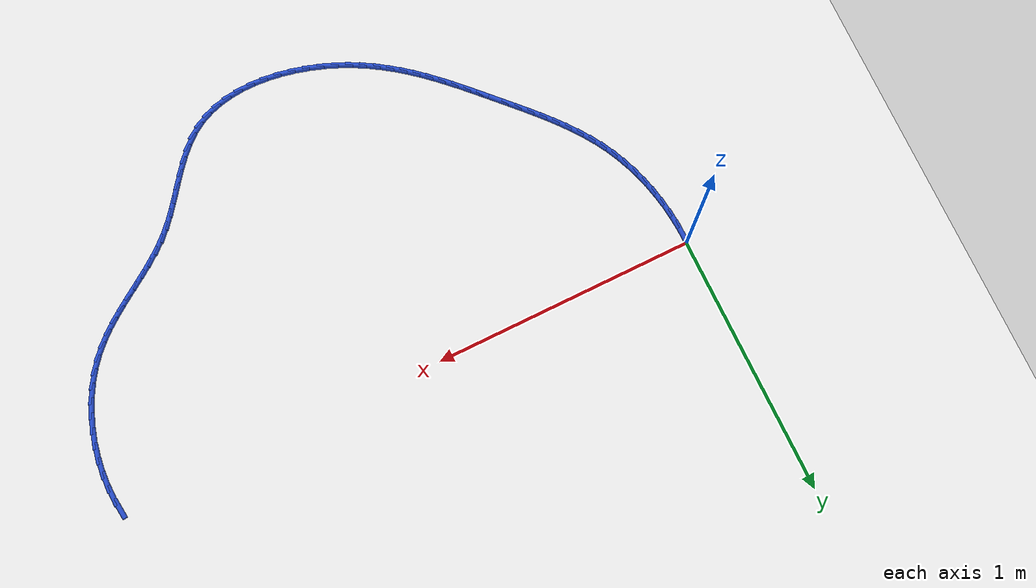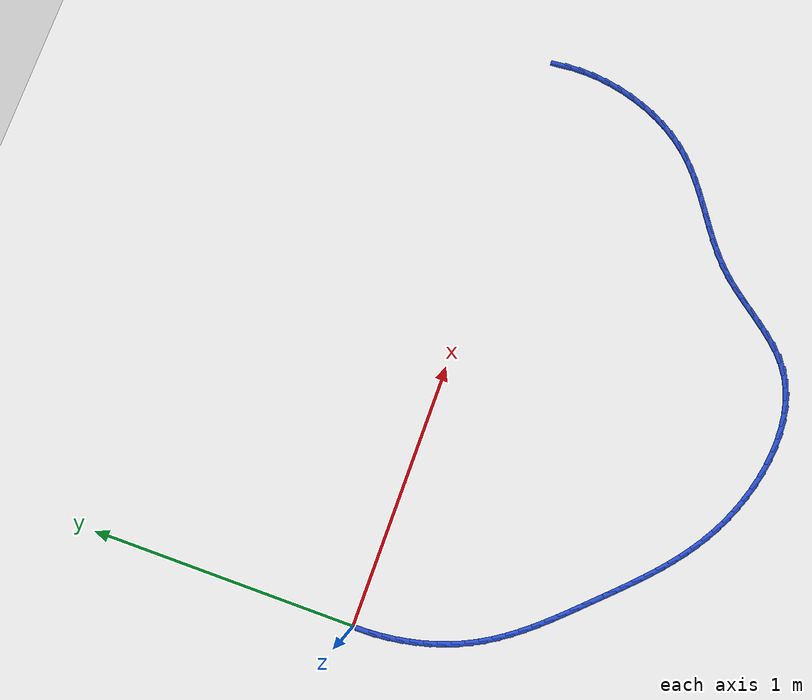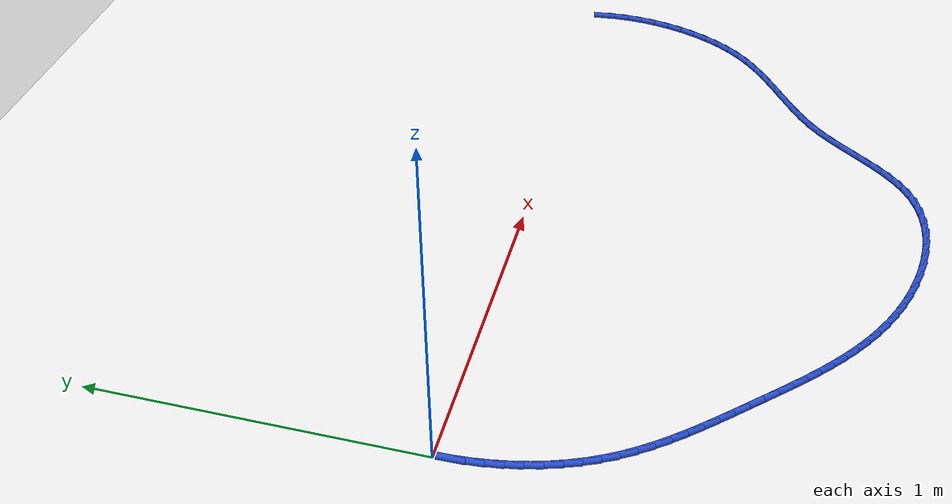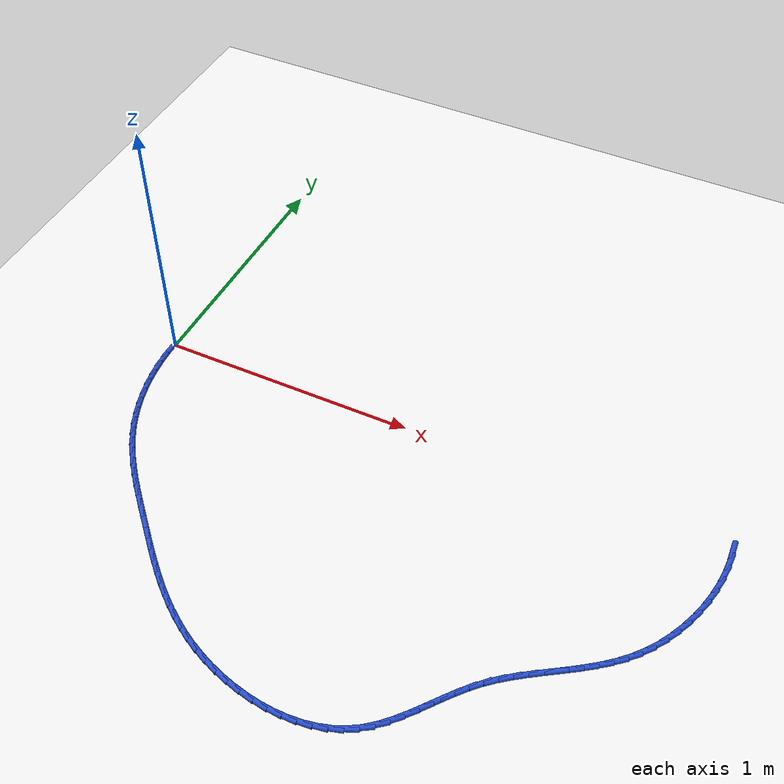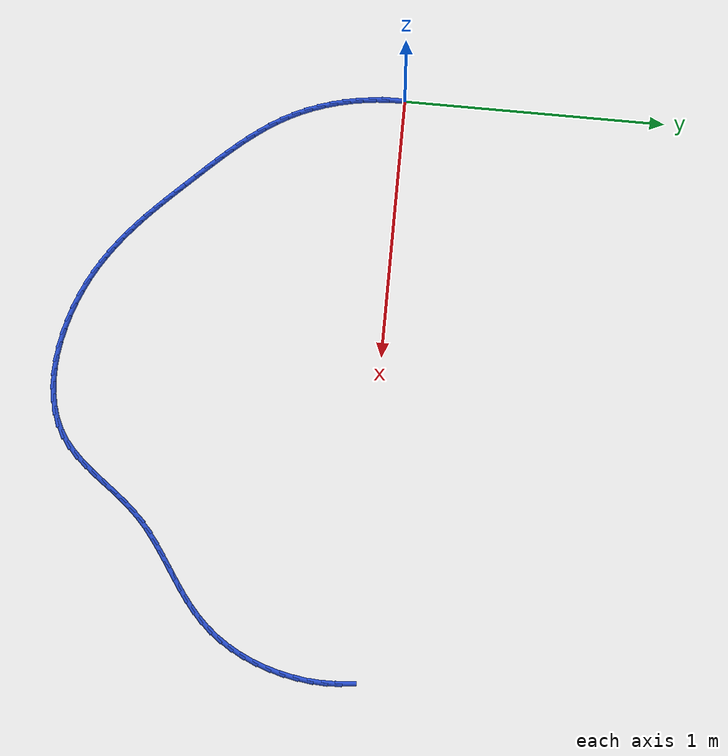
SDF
<sdf version="1.6">
 <world name="default">
  <model name="ground_plane">
   <static>1</static>
   <link name="link">
    <collision name="collision">
     <geometry><plane><normal>0 0 1</normal><size>100 100</size></plane></geometry>
     <surface><friction><ode><mu>100</mu><mu2>50</mu2></ode></friction></surface>
    </collision>
    <visual name="visual">
     <cast_shadows>0</cast_shadows>
     <geometry><plane><normal>0 0 1</normal><size>100 100</size></plane></geometry>
     <material>
      <script><uri>file://media/materials/scripts/gazebo.material</uri><name>Gazebo/WhiteGlow</name></script>
     </material>
    </visual>
   </link>
  </model>
  <model name="line">
   <link name="link_69">
    <pose>2.253079117322785 -0.021182918843514767 0.01 0 1.57 -1.490465903702625</pose>
    <collision name="collision">
     <geometry><cylinder><radius>0.01</radius><length>0.08</length></cylinder></geometry>
    </collision>
    <visual name="visual">
     <material>
      <script><name>Gazebo/Blue</name><uri>file://media/materials/scripts/gazebo.material</uri></script>
     </material>
     <geometry><cylinder><radius>0.01</radius><length>0.08</length></cylinder></geometry>
    </visual>
   </link>
   <link name="link_70">
    <pose>2.2573084556602803 -0.07371889444078131 0.01 0 1.57 1.5670767450500969</pose>
    <collision name="collision">
     <geometry><cylinder><radius>0.01</radius><length>0.08</length></cylinder></geometry>
    </collision>
    <visual name="visual">
     <material>
      <script><name>Gazebo/Blue</name><uri>file://media/materials/scripts/gazebo.material</uri></script>
     </material>
     <geometry><cylinder><radius>0.01</radius><length>0.08</length></cylinder></geometry>
    </visual>
   </link>
   <link name="link_71">
    <pose>2.2571092402563964 -0.1272771971793581 0.01 0 1.57 1.4882715956242358</pose>
    <collision name="collision">
     <geometry><cylinder><radius>0.01</radius><length>0.08</length></cylinder></geometry>
    </collision>
    <visual name="visual">
     <material>
      <script><name>Gazebo/Blue</name><uri>file://media/materials/scripts/gazebo.material</uri></script>
     </material>
     <geometry><cylinder><radius>0.01</radius><length>0.08</length></cylinder></geometry>
    </visual>
   </link>
   <link name="link_72">
    <pose>2.2526388152243806 -0.1813248989983842 0.01 0 1.57 1.413159112111547</pose>
    <collision name="collision">
     <geometry><cylinder><radius>0.01</radius><length>0.08</length></cylinder></geometry>
    </collision>
    <visual name="visual">
     <material>
      <script><name>Gazebo/Blue</name><uri>file://media/materials/scripts/gazebo.material</uri></script>
     </material>
     <geometry><cylinder><radius>0.01</radius><length>0.08</length></cylinder></geometry>
    </visual>
   </link>
   <link name="link_73">
    <pose>2.244054524677481 -0.23532907183699922 0.01 0 1.57 1.3402451435796385</pose>
    <collision name="collision">
     <geometry><cylinder><radius>0.01</radius><length>0.08</length></cylinder></geometry>
    </collision>
    <visual name="visual">
     <material>
      <script><name>Gazebo/Blue</name><uri>file://media/materials/scripts/gazebo.material</uri></script>
     </material>
     <geometry><cylinder><radius>0.01</radius><length>0.08</length></cylinder></geometry>
    </visual>
   </link>
   <link name="link_74">
    <pose>2.231513712728946 -0.28875678763434026 0.01 0 1.57 1.2680767030884115</pose>
    <collision name="collision">
     <geometry><cylinder><radius>0.01</radius><length>0.08</length></cylinder></geometry>
    </collision>
    <visual name="visual">
     <material>
      <script><name>Gazebo/Blue</name><uri>file://media/materials/scripts/gazebo.material</uri></script>
     </material>
     <geometry><cylinder><radius>0.01</radius><length>0.08</length></cylinder></geometry>
    </visual>
   </link>
   <link name="link_75">
    <pose>2.2151737234920246 -0.341075118329547 0.01 0 1.57 1.1952087913250653</pose>
    <collision name="collision">
     <geometry><cylinder><radius>0.01</radius><length>0.08</length></cylinder></geometry>
    </collision>
    <visual name="visual">
     <material>
      <script><name>Gazebo/Blue</name><uri>file://media/materials/scripts/gazebo.material</uri></script>
     </material>
     <geometry><cylinder><radius>0.01</radius><length>0.08</length></cylinder></geometry>
    </visual>
   </link>
   <link name="link_76">
    <pose>2.195191901079964 -0.3917511358617581 0.01 0 1.57 1.1201651749893309</pose>
    <collision name="collision">
     <geometry><cylinder><radius>0.01</radius><length>0.08</length></cylinder></geometry>
    </collision>
    <visual name="visual">
     <material>
      <script><name>Gazebo/Blue</name><uri>file://media/materials/scripts/gazebo.material</uri></script>
     </material>
     <geometry><cylinder><radius>0.01</radius><length>0.08</length></cylinder></geometry>
    </visual>
   </link>
   <link name="link_77">
    <pose>2.171725589606012 -0.44025191217011217 0.01 0 1.57 1.041401470117852</pose>
    <collision name="collision">
     <geometry><cylinder><radius>0.01</radius><length>0.08</length></cylinder></geometry>
    </collision>
    <visual name="visual">
     <material>
      <script><name>Gazebo/Blue</name><uri>file://media/materials/scripts/gazebo.material</uri></script>
     </material>
     <geometry><cylinder><radius>0.01</radius><length>0.08</length></cylinder></geometry>
    </visual>
   </link>
   <link name="link_78">
    <pose>2.1449321331834166 -0.48604451919374897 0.01 0 1.57 0.957280943739161</pose>
    <collision name="collision">
     <geometry><cylinder><radius>0.01</radius><length>0.08</length></cylinder></geometry>
    </collision>
    <visual name="visual">
     <material>
      <script><name>Gazebo/Blue</name><uri>file://media/materials/scripts/gazebo.material</uri></script>
     </material>
     <geometry><cylinder><radius>0.01</radius><length>0.08</length></cylinder></geometry>
    </visual>
   </link>
   <link name="link_79">
    <pose>2.1149688759254275 -0.5285960288718057 0.01 0 1.57 0.8664858030551501</pose>
    <collision name="collision">
     <geometry><cylinder><radius>0.01</radius><length>0.08</length></cylinder></geometry>
    </collision>
    <visual name="visual">
     <material>
      <script><name>Gazebo/Blue</name><uri>file://media/materials/scripts/gazebo.material</uri></script>
     </material>
     <geometry><cylinder><radius>0.01</radius><length>0.08</length></cylinder></geometry>
    </visual>
   </link>
   <link name="link_80">
    <pose>2.0820000516932327 -0.5673973103852394 0.01 0 1.57 0.7780754131058806</pose>
    <collision name="collision">
     <geometry><cylinder><radius>0.01</radius><length>0.08</length></cylinder></geometry>
    </collision>
    <visual name="visual">
     <material>
      <script><name>Gazebo/Blue</name><uri>file://media/materials/scripts/gazebo.material</uri></script>
     </material>
     <geometry><cylinder><radius>0.01</radius><length>0.08</length></cylinder></geometry>
    </visual>
   </link>
   <link name="link_81">
    <pose>2.046358288488346 -0.6025208675571405 0.01 0 1.57 0.7042316357529733</pose>
    <collision name="collision">
     <geometry><cylinder><radius>0.01</radius><length>0.08</length></cylinder></geometry>
    </collision>
    <visual name="visual">
     <material>
      <script><name>Gazebo/Blue</name><uri>file://media/materials/scripts/gazebo.material</uri></script>
     </material>
     <geometry><cylinder><radius>0.01</radius><length>0.08</length></cylinder></geometry>
    </visual>
   </link>
   <link name="link_82">
    <pose>2.00855031710709 -0.6346405565887573 0.01 0 1.57 0.6471058755725223</pose>
    <collision name="collision">
     <geometry><cylinder><radius>0.01</radius><length>0.08</length></cylinder></geometry>
    </collision>
    <visual name="visual">
     <material>
      <script><name>Gazebo/Blue</name><uri>file://media/materials/scripts/gazebo.material</uri></script>
     </material>
     <geometry><cylinder><radius>0.01</radius><length>0.08</length></cylinder></geometry>
    </visual>
   </link>
   <link name="link_83">
    <pose>1.9690909002224433 -0.6644579758444303 0.01 0 1.57 0.60740320628714</pose>
    <collision name="collision">
     <geometry><cylinder><radius>0.01</radius><length>0.08</length></cylinder></geometry>
    </collision>
    <visual name="visual">
     <material>
      <script><name>Gazebo/Blue</name><uri>file://media/materials/scripts/gazebo.material</uri></script>
     </material>
     <geometry><cylinder><radius>0.01</radius><length>0.08</length></cylinder></geometry>
    </visual>
   </link>
   <link name="link_84">
    <pose>1.9284948005073845 -0.6926747236885022 0.01 0 1.57 0.5852934455836823</pose>
    <collision name="collision">
     <geometry><cylinder><radius>0.01</radius><length>0.08</length></cylinder></geometry>
    </collision>
    <visual name="visual">
     <material>
      <script><name>Gazebo/Blue</name><uri>file://media/materials/scripts/gazebo.material</uri></script>
     </material>
     <geometry><cylinder><radius>0.01</radius><length>0.08</length></cylinder></geometry>
    </visual>
   </link>
   <link name="link_85">
    <pose>1.8872767806348936 -0.7199923984853148 0.01 0 1.57 0.5807656980729812</pose>
    <collision name="collision">
     <geometry><cylinder><radius>0.01</radius><length>0.08</length></cylinder></geometry>
    </collision>
    <visual name="visual">
     <material>
      <script><name>Gazebo/Blue</name><uri>file://media/materials/scripts/gazebo.material</uri></script>
     </material>
     <geometry><cylinder><radius>0.01</radius><length>0.08</length></cylinder></geometry>
    </visual>
   </link>
   <link name="link_86">
    <pose>1.8459516032779482 -0.74711259859921 0.01 0 1.57 0.5938329818406481</pose>
    <collision name="collision">
     <geometry><cylinder><radius>0.01</radius><length>0.08</length></cylinder></geometry>
    </collision>
    <visual name="visual">
     <material>
      <script><name>Gazebo/Blue</name><uri>file://media/materials/scripts/gazebo.material</uri></script>
     </material>
     <geometry><cylinder><radius>0.01</radius><length>0.08</length></cylinder></geometry>
    </visual>
   </link>
   <link name="link_87">
    <pose>1.8050340311095265 -0.7747369223945297 0.01 0 1.57 0.6245744467583751</pose>
    <collision name="collision">
     <geometry><cylinder><radius>0.01</radius><length>0.08</length></cylinder></geometry>
    </collision>
    <visual name="visual">
     <material>
      <script><name>Gazebo/Blue</name><uri>file://media/materials/scripts/gazebo.material</uri></script>
     </material>
     <geometry><cylinder><radius>0.01</radius><length>0.08</length></cylinder></geometry>
    </visual>
   </link>
   <link name="link_88">
    <pose>1.765038826802609 -0.8035669682356151 0.01 0 1.57 0.6730133702398493</pose>
    <collision name="collision">
     <geometry><cylinder><radius>0.01</radius><length>0.08</length></cylinder></geometry>
    </collision>
    <visual name="visual">
     <material>
      <script><name>Gazebo/Blue</name><uri>file://media/materials/scripts/gazebo.material</uri></script>
     </material>
     <geometry><cylinder><radius>0.01</radius><length>0.08</length></cylinder></geometry>
    </visual>
   </link>
   <link name="link_89">
    <pose>1.7264807530301733 -0.8343043344868087 0.01 0 1.57 0.7388302728225601</pose>
    <collision name="collision">
     <geometry><cylinder><radius>0.01</radius><length>0.08</length></cylinder></geometry>
    </collision>
    <visual name="visual">
     <material>
      <script><name>Gazebo/Blue</name><uri>file://media/materials/scripts/gazebo.material</uri></script>
     </material>
     <geometry><cylinder><radius>0.01</radius><length>0.08</length></cylinder></geometry>
    </visual>
   </link>
   <link name="link_90">
    <pose>1.6898745724651993 -0.867650619512452 0.01 0 1.57 0.8154487511754153</pose>
    <collision name="collision">
     <geometry><cylinder><radius>0.01</radius><length>0.08</length></cylinder></geometry>
    </collision>
    <visual name="visual">
     <material>
      <script><name>Gazebo/Blue</name><uri>file://media/materials/scripts/gazebo.material</uri></script>
     </material>
     <geometry><cylinder><radius>0.01</radius><length>0.08</length></cylinder></geometry>
    </visual>
   </link>
   <link name="link_91">
    <pose>1.655574744582883 -0.9040764345221076 0.01 0 1.57 0.8739197145126936</pose>
    <collision name="collision">
     <geometry><cylinder><radius>0.01</radius><length>0.08</length></cylinder></geometry>
    </collision>
    <visual name="visual">
     <material>
      <script><name>Gazebo/Blue</name><uri>file://media/materials/scripts/gazebo.material</uri></script>
     </material>
     <geometry><cylinder><radius>0.01</radius><length>0.08</length></cylinder></geometry>
    </visual>
   </link>
   <link name="link_92">
    <pose>1.6231109900513339 -0.9428639922833624 0.01 0 1.57 0.9064613731167324</pose>
    <collision name="collision">
     <geometry><cylinder><radius>0.01</radius><length>0.08</length></cylinder></geometry>
    </collision>
    <visual name="visual">
     <material>
      <script><name>Gazebo/Blue</name><uri>file://media/materials/scripts/gazebo.material</uri></script>
     </material>
     <geometry><cylinder><radius>0.01</radius><length>0.08</length></cylinder></geometry>
    </visual>
   </link>
   <link name="link_93">
    <pose>1.5917485420508328 -0.9829143951858887 0.01 0 1.57 0.9141320548324732</pose>
    <collision name="collision">
     <geometry><cylinder><radius>0.01</radius><length>0.08</length></cylinder></geometry>
    </collision>
    <visual name="visual">
     <material>
      <script><name>Gazebo/Blue</name><uri>file://media/materials/scripts/gazebo.material</uri></script>
     </material>
     <geometry><cylinder><radius>0.01</radius><length>0.08</length></cylinder></geometry>
    </visual>
   </link>
   <link name="link_94">
    <pose>1.560752512223063 -1.0231285704896291 0.01 0 1.57 0.8969657389285842</pose>
    <collision name="collision">
     <geometry><cylinder><radius>0.01</radius><length>0.08</length></cylinder></geometry>
    </collision>
    <visual name="visual">
     <material>
      <script><name>Gazebo/Blue</name><uri>file://media/materials/scripts/gazebo.material</uri></script>
     </material>
     <geometry><cylinder><radius>0.01</radius><length>0.08</length></cylinder></geometry>
    </visual>
   </link>
   <link name="link_95">
    <pose>1.5293880122097046 -1.062407445454527 0.01 0 1.57 0.8538105511425578</pose>
    <collision name="collision">
     <geometry><cylinder><radius>0.01</radius><length>0.08</length></cylinder></geometry>
    </collision>
    <visual name="visual">
     <material>
      <script><name>Gazebo/Blue</name><uri>file://media/materials/scripts/gazebo.material</uri></script>
     </material>
     <geometry><cylinder><radius>0.01</radius><length>0.08</length></cylinder></geometry>
    </visual>
   </link>
   <link name="link_96">
    <pose>1.4969201536524412 -1.0996519473405235 0.01 0 1.57 0.7825472871015674</pose>
    <collision name="collision">
     <geometry><cylinder><radius>0.01</radius><length>0.08</length></cylinder></geometry>
    </collision>
    <visual name="visual">
     <material>
      <script><name>Gazebo/Blue</name><uri>file://media/materials/scripts/gazebo.material</uri></script>
     </material>
     <geometry><cylinder><radius>0.01</radius><length>0.08</length></cylinder></geometry>
    </visual>
   </link>
   <link name="link_97">
    <pose>1.4626140481929537 -1.1337630034075623 0.01 0 1.57 0.6809128308107175</pose>
    <collision name="collision">
     <geometry><cylinder><radius>0.01</radius><length>0.08</length></cylinder></geometry>
    </collision>
    <visual name="visual">
     <material>
      <script><name>Gazebo/Blue</name><uri>file://media/materials/scripts/gazebo.material</uri></script>
     </material>
     <geometry><cylinder><radius>0.01</radius><length>0.08</length></cylinder></geometry>
    </visual>
   </link>
   <link name="link_98">
    <pose>1.4257348074729237 -1.1636415409155856 0.01 0 1.57 0.5498027103677591</pose>
    <collision name="collision">
     <geometry><cylinder><radius>0.01</radius><length>0.08</length></cylinder></geometry>
    </collision>
    <visual name="visual">
     <material>
      <script><name>Gazebo/Blue</name><uri>file://media/materials/scripts/gazebo.material</uri></script>
     </material>
     <geometry><cylinder><radius>0.01</radius><length>0.08</length></cylinder></geometry>
    </visual>
   </link>
   <link name="link_99">
    <pose>1.3855941386962536 -1.1882410993240962 0.01 0 1.57 0.41310760041337397</pose>
    <collision name="collision">
     <geometry><cylinder><radius>0.01</radius><length>0.08</length></cylinder></geometry>
    </collision>
    <visual name="visual">
     <material>
      <script><name>Gazebo/Blue</name><uri>file://media/materials/scripts/gazebo.material</uri></script>
     </material>
     <geometry><cylinder><radius>0.01</radius><length>0.08</length></cylinder></geometry>
    </visual>
   </link>
   <link name="link_100">
    <pose>1.3421749383269368 -1.2072730744551334 0.01 0 1.57 0.28909607476197546</pose>
    <collision name="collision">
     <geometry><cylinder><radius>0.01</radius><length>0.08</length></cylinder></geometry>
    </collision>
    <visual name="visual">
     <material>
      <script><name>Gazebo/Blue</name><uri>file://media/materials/scripts/gazebo.material</uri></script>
     </material>
     <geometry><cylinder><radius>0.01</radius><length>0.08</length></cylinder></geometry>
    </visual>
   </link>
   <link name="link_101">
    <pose>1.2959637937342712 -1.2210175919660184 0.01 0 1.57 0.1784967612604907</pose>
    <collision name="collision">
     <geometry><cylinder><radius>0.01</radius><length>0.08</length></cylinder></geometry>
    </collision>
    <visual name="visual">
     <material>
      <script><name>Gazebo/Blue</name><uri>file://media/materials/scripts/gazebo.material</uri></script>
     </material>
     <geometry><cylinder><radius>0.01</radius><length>0.08</length></cylinder></geometry>
    </visual>
   </link>
   <link name="link_102">
    <pose>1.2474595202668146 -1.2297685844273165 0.01 0 1.57 0.0803734774781849</pose>
    <collision name="collision">
     <geometry><cylinder><radius>0.01</radius><length>0.08</length></cylinder></geometry>
    </collision>
    <visual name="visual">
     <material>
      <script><name>Gazebo/Blue</name><uri>file://media/materials/scripts/gazebo.material</uri></script>
     </material>
     <geometry><cylinder><radius>0.01</radius><length>0.08</length></cylinder></geometry>
    </visual>
   </link>
   <link name="link_103">
    <pose>1.1971609332731254 -1.233819984409593 0.01 0 1.57 -0.0068661816147244726</pose>
    <collision name="collision">
     <geometry><cylinder><radius>0.01</radius><length>0.08</length></cylinder></geometry>
    </collision>
    <visual name="visual">
     <material>
      <script><name>Gazebo/Blue</name><uri>file://media/materials/scripts/gazebo.material</uri></script>
     </material>
     <geometry><cylinder><radius>0.01</radius><length>0.08</length></cylinder></geometry>
    </visual>
   </link>
   <link name="link_104">
    <pose>1.1455668481017613 -1.2334657244834135 0.01 0 1.57 -0.08503820394435636</pose>
    <collision name="collision">
     <geometry><cylinder><radius>0.01</radius><length>0.08</length></cylinder></geometry>
    </collision>
    <visual name="visual">
     <material>
      <script><name>Gazebo/Blue</name><uri>file://media/materials/scripts/gazebo.material</uri></script>
     </material>
     <geometry><cylinder><radius>0.01</radius><length>0.08</length></cylinder></geometry>
    </visual>
   </link>
   <link name="link_105">
    <pose>1.0931760801012829 -1.228999737219344 0.01 0 1.57 -0.15594486901023868</pose>
    <collision name="collision">
     <geometry><cylinder><radius>0.01</radius><length>0.08</length></cylinder></geometry>
    </collision>
    <visual name="visual">
     <material>
      <script><name>Gazebo/Blue</name><uri>file://media/materials/scripts/gazebo.material</uri></script>
     </material>
     <geometry><cylinder><radius>0.01</radius><length>0.08</length></cylinder></geometry>
    </visual>
   </link>
   <link name="link_106">
    <pose>1.040487444620248 -1.2207159551879494 0.01 0 1.57 -0.22127662373898463</pose>
    <collision name="collision">
     <geometry><cylinder><radius>0.01</radius><length>0.08</length></cylinder></geometry>
    </collision>
    <visual name="visual">
     <material>
      <script><name>Gazebo/Blue</name><uri>file://media/materials/scripts/gazebo.material</uri></script>
     </material>
     <geometry><cylinder><radius>0.01</radius><length>0.08</length></cylinder></geometry>
    </visual>
   </link>
   <link name="link_107">
    <pose>0.9879997570072141 -1.2089083109597953 0.01 0 1.57 -0.28259715803222135</pose>
    <collision name="collision">
     <geometry><cylinder><radius>0.01</radius><length>0.08</length></cylinder></geometry>
    </collision>
    <visual name="visual">
     <material>
      <script><name>Gazebo/Blue</name><uri>file://media/materials/scripts/gazebo.material</uri></script>
     </material>
     <geometry><cylinder><radius>0.01</radius><length>0.08</length></cylinder></geometry>
    </visual>
   </link>
   <link name="link_108">
    <pose>0.9362118326107407 -1.1938707371054476 0.01 0 1.57 -0.34137414167679103</pose>
    <collision name="collision">
     <geometry><cylinder><radius>0.01</radius><length>0.08</length></cylinder></geometry>
    </collision>
    <visual name="visual">
     <material>
      <script><name>Gazebo/Blue</name><uri>file://media/materials/scripts/gazebo.material</uri></script>
     </material>
     <geometry><cylinder><radius>0.01</radius><length>0.08</length></cylinder></geometry>
    </visual>
   </link>
   <link name="link_109">
    <pose>0.8856224867793855 -1.1758971661954716 0.01 0 1.57 -0.39903572055412667</pose>
    <collision name="collision">
     <geometry><cylinder><radius>0.01</radius><length>0.08</length></cylinder></geometry>
    </collision>
    <visual name="visual">
     <material>
      <script><name>Gazebo/Blue</name><uri>file://media/materials/scripts/gazebo.material</uri></script>
     </material>
     <geometry><cylinder><radius>0.01</radius><length>0.08</length></cylinder></geometry>
    </visual>
   </link>
   <link name="link_110">
    <pose>0.8367305348617082 -1.1552815308004327 0.01 0 1.57 -0.45689526833160005</pose>
    <collision name="collision">
     <geometry><cylinder><radius>0.01</radius><length>0.08</length></cylinder></geometry>
    </collision>
    <visual name="visual">
     <material>
      <script><name>Gazebo/Blue</name><uri>file://media/materials/scripts/gazebo.material</uri></script>
     </material>
     <geometry><cylinder><radius>0.01</radius><length>0.08</length></cylinder></geometry>
    </visual>
   </link>
   <link name="link_111">
    <pose>0.790009562821984 -1.1323140687374673 0.01 0 1.57 -0.5136685503952924</pose>
    <collision name="collision">
     <geometry><cylinder><radius>0.01</radius><length>0.08</length></cylinder></geometry>
    </collision>
    <visual name="visual">
     <material>
      <script><name>Gazebo/Blue</name><uri>file://media/materials/scripts/gazebo.material</uri></script>
     </material>
     <geometry><cylinder><radius>0.01</radius><length>0.08</length></cylinder></geometry>
    </visual>
   </link>
   <link name="link_112">
    <pose>0.7455458258618485 -1.1072282946136822 0.01 0 1.57 -0.5670344957185391</pose>
    <collision name="collision">
     <geometry><cylinder><radius>0.01</radius><length>0.08</length></cylinder></geometry>
    </collision>
    <visual name="visual">
     <material>
      <script><name>Gazebo/Blue</name><uri>file://media/materials/scripts/gazebo.material</uri></script>
     </material>
     <geometry><cylinder><radius>0.01</radius><length>0.08</length></cylinder></geometry>
    </visual>
   </link>
   <link name="link_113">
    <pose>0.703122305253009 -1.0802133096497897 0.01 0 1.57 -0.6161654145687563</pose>
    <collision name="collision">
     <geometry><cylinder><radius>0.01</radius><length>0.08</length></cylinder></geometry>
    </collision>
    <visual name="visual">
     <material>
      <script><name>Gazebo/Blue</name><uri>file://media/materials/scripts/gazebo.material</uri></script>
     </material>
     <geometry><cylinder><radius>0.01</radius><length>0.08</length></cylinder></geometry>
    </visual>
   </link>
   <link name="link_114">
    <pose>0.6625138802879413 -1.0514570285605132 0.01 0 1.57 -0.660435735516479</pose>
    <collision name="collision">
     <geometry><cylinder><radius>0.01</radius><length>0.08</length></cylinder></geometry>
    </collision>
    <visual name="visual">
     <material>
      <script><name>Gazebo/Blue</name><uri>file://media/materials/scripts/gazebo.material</uri></script>
     </material>
     <geometry><cylinder><radius>0.01</radius><length>0.08</length></cylinder></geometry>
    </visual>
   </link>
   <link name="link_115">
    <pose>0.6234954302591198 -1.0211473660605757 0.01 0 1.57 -0.699377350561897</pose>
    <collision name="collision">
     <geometry><cylinder><radius>0.01</radius><length>0.08</length></cylinder></geometry>
    </collision>
    <visual name="visual">
     <material>
      <script><name>Gazebo/Blue</name><uri>file://media/materials/scripts/gazebo.material</uri></script>
     </material>
     <geometry><cylinder><radius>0.01</radius><length>0.08</length></cylinder></geometry>
    </visual>
   </link>
   <link name="link_116">
    <pose>0.5858418344590187 -0.9894722368647004 0.01 0 1.57 -0.7326668771373367</pose>
    <collision name="collision">
     <geometry><cylinder><radius>0.01</radius><length>0.08</length></cylinder></geometry>
    </collision>
    <visual name="visual">
     <material>
      <script><name>Gazebo/Blue</name><uri>file://media/materials/scripts/gazebo.material</uri></script>
     </material>
     <geometry><cylinder><radius>0.01</radius><length>0.08</length></cylinder></geometry>
    </visual>
   </link>
   <link name="link_117">
    <pose>0.549327972180112 -0.9566195556876098 0.01 0 1.57 -0.7601027052376449</pose>
    <collision name="collision">
     <geometry><cylinder><radius>0.01</radius><length>0.08</length></cylinder></geometry>
    </collision>
    <visual name="visual">
     <material>
      <script><name>Gazebo/Blue</name><uri>file://media/materials/scripts/gazebo.material</uri></script>
     </material>
     <geometry><cylinder><radius>0.01</radius><length>0.08</length></cylinder></geometry>
    </visual>
   </link>
   <link name="link_118">
    <pose>0.5137287227148756 -0.9227772372440284 0.01 0 1.57 -0.7815778821567781</pose>
    <collision name="collision">
     <geometry><cylinder><radius>0.01</radius><length>0.08</length></cylinder></geometry>
    </collision>
    <visual name="visual">
     <material>
      <script><name>Gazebo/Blue</name><uri>file://media/materials/scripts/gazebo.material</uri></script>
     </material>
     <geometry><cylinder><radius>0.01</radius><length>0.08</length></cylinder></geometry>
    </visual>
   </link>
   <link name="link_119">
    <pose>0.4788189653557832 -0.8881331962486783 0.01 0 1.57 -0.7970536637883447</pose>
    <collision name="collision">
     <geometry><cylinder><radius>0.01</radius><length>0.08</length></cylinder></geometry>
    </collision>
    <visual name="visual">
     <material>
      <script><name>Gazebo/Blue</name><uri>file://media/materials/scripts/gazebo.material</uri></script>
     </material>
     <geometry><cylinder><radius>0.01</radius><length>0.08</length></cylinder></geometry>
    </visual>
   </link>
   <link name="link_120">
    <pose>0.4443735793953094 -0.8528753474162825 0.01 0 1.57 -0.8065369412714889</pose>
    <collision name="collision">
     <geometry><cylinder><radius>0.01</radius><length>0.08</length></cylinder></geometry>
    </collision>
    <visual name="visual">
     <material>
      <script><name>Gazebo/Blue</name><uri>file://media/materials/scripts/gazebo.material</uri></script>
     </material>
     <geometry><cylinder><radius>0.01</radius><length>0.08</length></cylinder></geometry>
    </visual>
   </link>
   <link name="link_121">
    <pose>0.41016744412592926 -0.8171916054615652 0.01 0 1.57 -0.8100633036550033</pose>
    <collision name="collision">
     <geometry><cylinder><radius>0.01</radius><length>0.08</length></cylinder></geometry>
    </collision>
    <visual name="visual">
     <material>
      <script><name>Gazebo/Blue</name><uri>file://media/materials/scripts/gazebo.material</uri></script>
     </material>
     <geometry><cylinder><radius>0.01</radius><length>0.08</length></cylinder></geometry>
    </visual>
   </link>
   <link name="link_122">
    <pose>0.3759754391884549 -0.7812698848670939 0.01 0 1.57 -0.8099681636429859</pose>
    <collision name="collision">
     <geometry><cylinder><radius>0.01</radius><length>0.08</length></cylinder></geometry>
    </collision>
    <visual name="visual">
     <material>
      <script><name>Gazebo/Blue</name><uri>file://media/materials/scripts/gazebo.material</uri></script>
     </material>
     <geometry><cylinder><radius>0.01</radius><length>0.08</length></cylinder></geometry>
    </visual>
   </link>
   <link name="link_123">
    <pose>0.34166838421716655 -0.7452341599042203 0.01 0 1.57 -0.814979259741752</pose>
    <collision name="collision">
     <geometry><cylinder><radius>0.01</radius><length>0.08</length></cylinder></geometry>
    </collision>
    <visual name="visual">
     <material>
      <script><name>Gazebo/Blue</name><uri>file://media/materials/scripts/gazebo.material</uri></script>
     </material>
     <geometry><cylinder><radius>0.01</radius><length>0.08</length></cylinder></geometry>
    </visual>
   </link>
   <link name="link_124">
    <pose>0.3074833070432797 -0.7089643415645641 0.01 0 1.57 -0.8271727270363326</pose>
    <collision name="collision">
     <geometry><cylinder><radius>0.01</radius><length>0.08</length></cylinder></geometry>
    </collision>
    <visual name="visual">
     <material>
      <script><name>Gazebo/Blue</name><uri>file://media/materials/scripts/gazebo.material</uri></script>
     </material>
     <geometry><cylinder><radius>0.01</radius><length>0.08</length></cylinder></geometry>
    </visual>
   </link>
   <link name="link_125">
    <pose>0.2737445985280172 -0.6722821168354541 0.01 0 1.57 -0.8466106097963475</pose>
    <collision name="collision">
     <geometry><cylinder><radius>0.01</radius><length>0.08</length></cylinder></geometry>
    </collision>
    <visual name="visual">
     <material>
      <script><name>Gazebo/Blue</name><uri>file://media/materials/scripts/gazebo.material</uri></script>
     </material>
     <geometry><cylinder><radius>0.01</radius><length>0.08</length></cylinder></geometry>
    </visual>
   </link>
   <link name="link_126">
    <pose>0.2407766495326015 -0.6350091727042174 0.01 0 1.57 -0.8734087612382713</pose>
    <collision name="collision">
     <geometry><cylinder><radius>0.01</radius><length>0.08</length></cylinder></geometry>
    </collision>
    <visual name="visual">
     <material>
      <script><name>Gazebo/Blue</name><uri>file://media/materials/scripts/gazebo.material</uri></script>
     </material>
     <geometry><cylinder><radius>0.01</radius><length>0.08</length></cylinder></geometry>
    </visual>
   </link>
   <link name="link_127">
    <pose>0.20890385091825683 -0.5969671961581833 0.01 0 1.57 -0.9077072288622362</pose>
    <collision name="collision">
     <geometry><cylinder><radius>0.01</radius><length>0.08</length></cylinder></geometry>
    </collision>
    <visual name="visual">
     <material>
      <script><name>Gazebo/Blue</name><uri>file://media/materials/scripts/gazebo.material</uri></script>
     </material>
     <geometry><cylinder><radius>0.01</radius><length>0.08</length></cylinder></geometry>
    </visual>
   </link>
   <link name="link_128">
    <pose>0.17845059354620565 -0.5579778741846791 0.01 0 1.57 -0.9496269083709507</pose>
    <collision name="collision">
     <geometry><cylinder><radius>0.01</radius><length>0.08</length></cylinder></geometry>
    </collision>
    <visual name="visual">
     <material>
      <script><name>Gazebo/Blue</name><uri>file://media/materials/scripts/gazebo.material</uri></script>
     </material>
     <geometry><cylinder><radius>0.01</radius><length>0.08</length></cylinder></geometry>
    </visual>
   </link>
   <link name="link_129">
    <pose>0.14974126827767092 -0.5178628937710328 0.01 0 1.57 -0.9992106076682364</pose>
    <collision name="collision">
     <geometry><cylinder><radius>0.01</radius><length>0.08</length></cylinder></geometry>
    </collision>
    <visual name="visual">
     <material>
      <script><name>Gazebo/Blue</name><uri>file://media/materials/scripts/gazebo.material</uri></script>
     </material>
     <geometry><cylinder><radius>0.01</radius><length>0.08</length></cylinder></geometry>
    </visual>
   </link>
   <link name="link_130">
    <pose>0.12310026597387583 -0.47644394190457273 0.01 0 1.57 -1.0563491892126509</pose>
    <collision name="collision">
     <geometry><cylinder><radius>0.01</radius><length>0.08</length></cylinder></geometry>
    </collision>
    <visual name="visual">
     <material>
      <script><name>Gazebo/Blue</name><uri>file://media/materials/scripts/gazebo.material</uri></script>
     </material>
     <geometry><cylinder><radius>0.01</radius><length>0.08</length></cylinder></geometry>
    </visual>
   </link>
   <link name="link_131">
    <pose>0.09885197746884411 -0.4335427056042994 0.01 0 1.57 -1.119032684332613</pose>
    <collision name="collision">
     <geometry><cylinder><radius>0.01</radius><length>0.08</length></cylinder></geometry>
    </collision>
    <visual name="visual">
     <material>
      <script><name>Gazebo/Blue</name><uri>file://media/materials/scripts/gazebo.material</uri></script>
     </material>
     <geometry><cylinder><radius>0.01</radius><length>0.08</length></cylinder></geometry>
    </visual>
   </link>
   <link name="link_132">
    <pose>0.0772622346529628 -0.38904906443972614 0.01 0 1.57 -1.1805253907014566</pose>
    <collision name="collision">
     <geometry><cylinder><radius>0.01</radius><length>0.08</length></cylinder></geometry>
    </collision>
    <visual name="visual">
     <material>
      <script><name>Gazebo/Blue</name><uri>file://media/materials/scripts/gazebo.material</uri></script>
     </material>
     <geometry><cylinder><radius>0.01</radius><length>0.08</length></cylinder></geometry>
    </visual>
   </link>
   <link name="link_133">
    <pose>0.058368054027493385 -0.343119356082426 0.01 0 1.57 -1.2394800943022848</pose>
    <collision name="collision">
     <geometry><cylinder><radius>0.01</radius><length>0.08</length></cylinder></geometry>
    </collision>
    <visual name="visual">
     <material>
      <script><name>Gazebo/Blue</name><uri>file://media/materials/scripts/gazebo.material</uri></script>
     </material>
     <geometry><cylinder><radius>0.01</radius><length>0.08</length></cylinder></geometry>
    </visual>
   </link>
   <link name="link_134">
    <pose>0.042150572128379464 -0.29597499105400626 0.01 0 1.57 -1.2962257383660838</pose>
    <collision name="collision">
     <geometry><cylinder><radius>0.01</radius><length>0.08</length></cylinder></geometry>
    </collision>
    <visual name="visual">
     <material>
      <script><name>Gazebo/Blue</name><uri>file://media/materials/scripts/gazebo.material</uri></script>
     </material>
     <geometry><cylinder><radius>0.01</radius><length>0.08</length></cylinder></geometry>
    </visual>
   </link>
   <link name="link_135">
    <pose>0.02859092549156437 -0.2478373798760738 0.01 0 1.57 -1.351116227000631</pose>
    <collision name="collision">
     <geometry><cylinder><radius>0.01</radius><length>0.08</length></cylinder></geometry>
    </collision>
    <visual name="visual">
     <material>
      <script><name>Gazebo/Blue</name><uri>file://media/materials/scripts/gazebo.material</uri></script>
     </material>
     <geometry><cylinder><radius>0.01</radius><length>0.08</length></cylinder></geometry>
    </visual>
   </link>
   <link name="link_136">
    <pose>0.017670250652992086 -0.19892793307023773 0.01 0 1.57 -1.4045215522306174</pose>
    <collision name="collision">
     <geometry><cylinder><radius>0.01</radius><length>0.08</length></cylinder></geometry>
    </collision>
    <visual name="visual">
     <material>
      <script><name>Gazebo/Blue</name><uri>file://media/materials/scripts/gazebo.material</uri></script>
     </material>
     <geometry><cylinder><radius>0.01</radius><length>0.08</length></cylinder></geometry>
    </visual>
   </link>
   <link name="link_137">
    <pose>0.00936968414860594 -0.14946806115810485 0.01 0 1.57 -1.4568226556102815</pose>
    <collision name="collision">
     <geometry><cylinder><radius>0.01</radius><length>0.08</length></cylinder></geometry>
    </collision>
    <visual name="visual">
     <material>
      <script><name>Gazebo/Blue</name><uri>file://media/materials/scripts/gazebo.material</uri></script>
     </material>
     <geometry><cylinder><radius>0.01</radius><length>0.08</length></cylinder></geometry>
    </visual>
   </link>
   <link name="link_138">
    <pose>0.0036703625143495013 -0.09967917466128268 0.01 0 1.57 -1.5084092674588687</pose>
    <collision name="collision">
     <geometry><cylinder><radius>0.01</radius><length>0.08</length></cylinder></geometry>
    </collision>
    <visual name="visual">
     <material>
      <script><name>Gazebo/Blue</name><uri>file://media/materials/scripts/gazebo.material</uri></script>
     </material>
     <geometry><cylinder><radius>0.01</radius><length>0.08</length></cylinder></geometry>
    </visual>
   </link>
   <link name="link_139">
    <pose>0.000553422286166309 -0.04978268410137875 0.01 0 1.57 -1.5596800219975133</pose>
    <collision name="collision">
     <geometry><cylinder><radius>0.01</radius><length>0.08</length></cylinder></geometry>
    </collision>
    <visual name="visual">
     <material>
      <script><name>Gazebo/Blue</name><uri>file://media/materials/scripts/gazebo.material</uri></script>
     </material>
     <geometry><cylinder><radius>0.01</radius><length>0.08</length></cylinder></geometry>
    </visual>
   </link>
  </model>
 </world>
</sdf>
